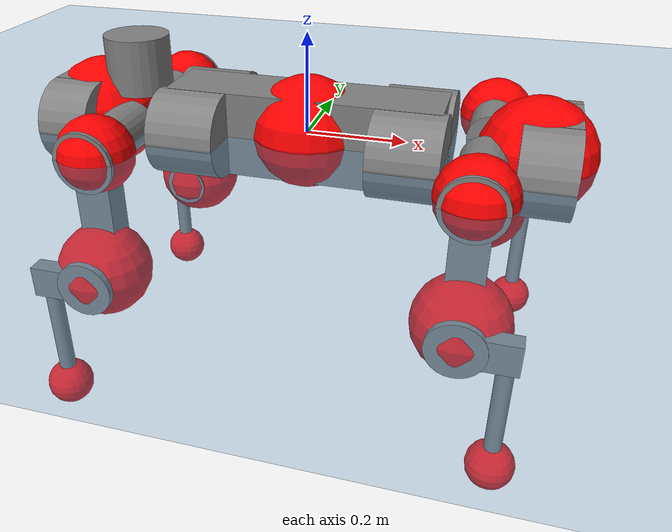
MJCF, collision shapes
<mujoco model="anymal_c">
  <compiler angle="radian" assetdir="assets" balanceinertia="true" inertiafromgeom="false"/>

  <option timestep="0.005" density="1.2" viscosity="2e-05"/>

  <size nkey="1"/>

  <visual>
    <quality shadowsize="8192"/>
    <map shadowclip="0.5"/>
  </visual>

  <default>
    <default class="/">
      <material specular="0" shininess="0.25"/>
      <geom contype="0" conaffinity="0" group="1" solref="-1000 -80"/>
      <site size="0.01 0.005 0.005" group="5"/>
      <general forcelimited="true" forcerange="-80 80" biastype="affine" gainprm="80" biasprm="0 -80 -2"/>
      <default class="anymal_c">
        <joint armature="0.01" damping="0.01" frictionloss="0.1"/>
        <default class="visual">
          <geom type="mesh" group="2"/>
          <default class="visual_zflip"/>
        </default>
        <default class="collision">
          <geom type="cylinder" group="3"/>
          <default class="foot">
            <geom size="0.03 0 0" type="sphere" condim="6" priority="1" friction="0.8 0.02 0.01" solimp="0.015 1 0.03"/>
          </default>
        </default>
      </default>
      <default class="reward_collision_sphere">
        <geom group="5" rgba="1 0 0 1"/>
      </default>
    </default>
  </default>

  <asset>
    <texture type="skybox" colorspace="auto" name="//unnamed_texture_0" builtin="gradient" rgb1="0.95 0.95 0.95" rgb2="0.95 0.95 0.95" width="100" height="600"/>
    <texture type="2d" colorspace="auto" name="texplane" builtin="checker" rgb1="0.345 0.575 0.748" rgb2="0.345 0.575 0.748" markrgb="1 1 1" width="512" height="512"/>
    <texture type="2d" colorspace="linear" name="base" file="base.png"/>
    <texture type="2d" colorspace="linear" name="top_shell" file="top_shell.png"/>
    <texture type="2d" colorspace="linear" name="bottom_shell" file="bottom_shell.png"/>
    <texture type="2d" colorspace="linear" name="remote" file="remote.png"/>
    <texture type="2d" colorspace="linear" name="hatch" file="hatch.png"/>
    <texture type="2d" colorspace="linear" name="handle" file="handle.png"/>
    <texture type="2d" colorspace="linear" name="face" file="face.png"/>
    <texture type="2d" colorspace="linear" name="battery" file="battery.png"/>
    <texture type="2d" colorspace="linear" name="lidar_cage" file="lidar_cage.png"/>
    <texture type="2d" colorspace="linear" name="depth_camera" file="depth_camera.png"/>
    <texture type="2d" colorspace="linear" name="wide_angle_camera" file="wide_angle_camera.png"/>
    <texture type="2d" colorspace="linear" name="lidar" file="lidar.png"/>
    <texture type="2d" colorspace="linear" name="drive" file="drive.png"/>
    <texture type="2d" colorspace="linear" name="hip_l" file="hip_l.png"/>
    <texture type="2d" colorspace="linear" name="shank_l" file="shank_l.png"/>
    <texture type="2d" colorspace="linear" name="foot" file="foot.png"/>
    <texture type="2d" colorspace="linear" name="thigh" file="thigh.png"/>
    <texture type="2d" colorspace="linear" name="shank_r" file="shank_r.png"/>
    <texture type="2d" colorspace="linear" name="hip_r" file="hip_r.png"/>
    <material name="MatPlane" class="/" texture="texplane" texuniform="true" texrepeat="2 2" specular="0.9" shininess="0.5"/>
    <material name="black_plastic" class="/" rgba="0.007 0.007 0.007 1"/>
    <material name="green" class="/" rgba="0.052 0.178 0.033 1"/>
    <material name="red" class="/" rgba="0.178 0.006 0.005 1"/>
    <material name="yellow" class="/" rgba="0.178 0.119 0.006 1"/>
    <material name="lwl" class="/" rgba="0.8 0.8 0.8 1"/>
    <material name="base" class="/" texture="base"/>
    <material name="top_shell" class="/" texture="top_shell"/>
    <material name="bottom_shell" class="/" texture="bottom_shell"/>
    <material name="hip_l" class="/" texture="hip_l"/>
    <material name="thigh" class="/" texture="thigh"/>
    <material name="shank_l" class="/" texture="shank_l"/>
    <material name="foot" class="/" texture="foot"/>
    <material name="hip_r" class="/" texture="hip_r"/>
    <material name="shank" class="/" texture="shank_r"/>
    <material name="hatch" class="/" texture="hatch"/>
    <material name="remote" class="/" texture="remote"/>
    <material name="handle" class="/" texture="handle"/>
    <material name="face" class="/" texture="face"/>
    <material name="depth_camera" class="/" texture="depth_camera"/>
    <material name="wide_angle_camera" class="/" texture="wide_angle_camera"/>
    <material name="battery" class="/" texture="battery"/>
    <material name="lidar_cage" class="/" texture="lidar_cage"/>
    <material name="lidar" class="/" texture="lidar"/>
    <material name="drive" class="/" texture="drive"/>
    <mesh name="base_0" class="/" file="base_0.obj"/>
    <mesh name="base_1" class="/" file="base_1.obj"/>
    <mesh name="base_2" class="/" file="base_2.obj"/>
    <mesh name="base_3" class="/" file="base_3.obj"/>
    <mesh name="base_4" class="/" file="base_4.obj"/>
    <mesh name="base_5" class="/" file="base_5.obj"/>
    <mesh name="top_shell" class="/" file="top_shell.obj"/>
    <mesh name="bottom_shell" class="/" file="bottom_shell.obj"/>
    <mesh name="remote" class="/" file="remote.obj"/>
    <mesh name="handle" class="/" file="handle.obj"/>
    <mesh name="face" class="/" file="face.obj"/>
    <mesh name="wide_angle_camera" class="/" file="wide_angle_camera.obj"/>
    <mesh name="depth_camera" class="/" file="depth_camera.obj"/>
    <mesh name="battery" class="/" file="battery.obj"/>
    <mesh name="lidar_cage" class="/" file="lidar_cage.obj"/>
    <mesh name="lidar" class="/" file="lidar.obj"/>
    <mesh name="drive" class="/" file="drive.obj"/>
    <mesh name="hip_l" class="/" file="hip_l.obj"/>
    <mesh name="thigh" class="/" file="thigh.obj"/>
    <mesh name="shank_l" class="/" file="shank_l.obj"/>
    <mesh name="foot" class="/" file="foot.obj"/>
    <mesh name="hip_r" class="/" file="hip_r.obj"/>
    <mesh name="hatch" class="/" file="hatch.obj"/>
    <mesh name="shank_r" class="/" file="shank_r.obj"/>
  </asset>

  <worldbody>
    <geom name="floor" class="/" size="100 100 0.125" type="plane" group="0" material="MatPlane"/>
    <light name="toplight_shadow" class="/" pos="0 0 5" dir="0.0990148 0.0990148 -0.990148" type="directional" ambient="0.04 0.04 0.04" diffuse="0.55 0.55 0.55" specular="0.12 0.12 0.12"/>
    <light name="toplight_fill" class="/" pos="0 0 5" dir="0.0990148 0.0990148 -0.990148" type="directional" castshadow="false" ambient="0.04 0.04 0.04" diffuse="0.3 0.3 0.3" specular="0.08 0.08 0.08"/>
    <body name="trunk" childclass="anymal_c" pos="0.00122966 -0.00066146 0.00242085" quat="1 0.000236277 0.000684986 0.000308747">
      <inertial pos="0.00223297 -0.000224394 0.0352187" quat="0.495256 0.502002 0.503586 0.499116" mass="15.1811" diaginertia="0.571894 0.573062 0.0845994"/>
      <joint name="//unnamed_joint_0" type="free" armature="0" damping="0" frictionloss="0"/>
      <geom name="//unnamed_geom_1" class="visual" material="green" mesh="base_0"/>
      <geom name="//unnamed_geom_2" class="visual" material="yellow" mesh="base_1"/>
      <geom name="//unnamed_geom_3" class="visual" material="red" mesh="base_2"/>
      <geom name="//unnamed_geom_4" class="visual" material="black_plastic" mesh="base_3"/>
      <geom name="//unnamed_geom_5" class="visual" material="lwl" mesh="base_4"/>
      <geom name="//unnamed_geom_6" class="visual" material="base" mesh="base_5"/>
      <geom name="trunk_1" class="collision" size="0.27262 0.0658049 0.0846063" type="box"/>
      <geom name="trunk_2" class="collision" size="0.0846063 0.0681551" pos="0.214992 0.0697444 0" quat="0.707107 0 0.707107 0"/>
      <geom name="trunk_3" class="collision" size="0.0846063 0.0681551" pos="-0.214992 0.0697444 0" quat="0.707107 0 0.707107 0"/>
      <geom name="trunk_4" class="collision" size="0.0846063 0.0681551" pos="0.214992 -0.0697444 0" quat="0.707107 0 0.707107 0"/>
      <geom name="trunk_5" class="collision" size="0.0846063 0.0681551" pos="-0.214992 -0.0697444 0" quat="0.707107 0 0.707107 0"/>
      <geom name="//unnamed_geom_12" class="visual" material="top_shell" mesh="top_shell"/>
      <geom name="//unnamed_geom_13" class="visual" material="bottom_shell" mesh="bottom_shell"/>
      <geom name="//unnamed_geom_14" class="visual" material="remote" mesh="remote"/>
      <geom name="//unnamed_geom_15" class="visual" material="handle" mesh="handle"/>
      <geom name="//unnamed_geom_16" class="visual" pos="0.40972 0 0" quat="1 0 0 0" material="face" mesh="face"/>
      <geom name="trunk_6" class="collision" size="0.0517039 0.0658049 0.0846063" pos="0.464086 0 0" type="box"/>
      <geom name="//unnamed_geom_18" class="collision" size="0.0846063 0.0517039" pos="0.464086 0.0697444 0" quat="0.707107 0 0.707107 0"/>
      <geom name="//unnamed_geom_19" class="collision" size="0.0846063 0.0517039" pos="0.464086 -0.0697444 0" quat="0.707107 0 0.707107 0"/>
      <geom name="//unnamed_geom_20" class="visual" pos="0.45632 0 -0.0232301" quat="0.965926 0 0.258819 0" material="depth_camera" mesh="depth_camera"/>
      <geom name="//unnamed_geom_21" class="visual" pos="0.507085 0 0.0125058" material="wide_angle_camera" mesh="wide_angle_camera"/>
      <geom name="//unnamed_geom_22" class="visual_zflip" pos="-0.40972 0 0" quat="0 0 0 1" material="face" mesh="face"/>
      <geom name="trunk_7" class="collision" size="0.0517039 0.0658049 0.0846063" pos="-0.464086 0 0" quat="0 0 0 1" type="box"/>
      <geom name="//unnamed_geom_24" class="collision" size="0.0846063 0.0517039" pos="-0.464086 -0.0697444 0" quat="0 -0.707107 0 0.707107"/>
      <geom name="//unnamed_geom_25" class="collision" size="0.0846063 0.0517039" pos="-0.464086 0.0697444 0" quat="0 -0.707107 0 0.707107"/>
      <geom name="//unnamed_geom_26" class="visual" pos="-0.45632 0 -0.0232301" quat="0 -0.258819 0 0.965926" material="depth_camera" mesh="depth_camera"/>
      <geom name="//unnamed_geom_27" class="visual_zflip" pos="-0.507085 0 0.0125058" quat="0 0 0 1" material="wide_angle_camera" mesh="wide_angle_camera"/>
      <geom name="//unnamed_geom_28" class="visual" material="battery" mesh="battery"/>
      <geom name="//unnamed_geom_29" class="visual" pos="0 0.0762779 0.0254315" quat="0.683013 -0.183013 0.183013 0.683013" material="depth_camera" mesh="depth_camera"/>
      <geom name="//unnamed_geom_30" class="visual" pos="0 -0.0762779 0.0254315" quat="0.683013 0.183013 0.183013 -0.683013" material="depth_camera" mesh="depth_camera"/>
      <geom name="//unnamed_geom_31" class="visual" pos="-0.359803 0 0.0614014" quat="1 0 0 0" material="lidar_cage" mesh="lidar_cage"/>
      <geom name="trunk_8" class="collision" size="0.0658049 0.0564042" pos="-0.359803 0 0.111525"/>
      <geom name="//unnamed_geom_33" class="visual" pos="-0.359803 3.096e-06 0.118793" quat="0.707107 0 0 -0.707107" material="lidar" mesh="lidar"/>
      <geom name="//unnamed_geom_34" class="visual" pos="0.296442 0.103563 2.77652e-09" quat="0.258819 0.965926 0 0" material="drive" mesh="drive"/>
      <geom name="//unnamed_geom_35" class="visual" pos="0.296442 -0.103563 -2.77652e-09" quat="0.258819 -0.965926 0 0" material="drive" mesh="drive"/>
      <geom name="//unnamed_geom_36" class="visual" pos="-0.296442 0.103563 -2.77652e-09" quat="0 0 0.965926 -0.258819" material="drive" mesh="drive"/>
      <geom name="//unnamed_geom_37" class="visual" pos="-0.296442 -0.103563 2.77652e-09" quat="0 0 -0.965926 -0.258819" material="drive" mesh="drive"/>
      <geom name="//unnamed_geom_38" class="visual" pos="0.114662 0 0.0609837" quat="1 0 0 0" material="hatch" mesh="hatch"/>
      <geom name="//unnamed_geom_39" class="reward_collision_sphere" size="0.112808"/>
      <geom name="//unnamed_geom_40" class="reward_collision_sphere" size="0.112808" pos="0.444811 0 0"/>
      <geom name="//unnamed_geom_41" class="reward_collision_sphere" size="0.112808" pos="-0.444811 0 0"/>
      <site name="imu" pos="0.256209 0.0174588 0.0372809" size="0.0094007"/>
      <camera name="track" pos="0 -1.9927 0" quat="0.707107 0.707107 0 0" mode="trackcom"/>
      <camera name="ego_camera" pos="0.444811 0 -0.0334157" quat="-0.5 -0.5 0.5 0.5"/>
      <body name="LF_HIP" pos="0.296568 0.107149 0.00160406" quat="0.259092 0.965853 -1.86891e-05 -0.000198401">
        <inertial pos="0.0571739 -0.0159209 -0.00465347" quat="-0.122972 0.717006 -0.134834 0.672756" mass="2.24224" diaginertia="0.00544206 0.00455941 0.00131005"/>
        <joint name="LF_HAA" pos="0 0 0" axis="0.999993 -0.000880872 -0.00362766" range="-0.700451 0.531829" armature="0.00935099" damping="0.0035956" frictionloss="0.104013"/>
        <geom name="//unnamed_geom_42" class="visual" pos="0 0.00016333 -2.68268e-05" quat="0.258819 -0.965926 0 0" material="hip_l" mesh="hip_l"/>
        <geom name="//unnamed_geom_43" class="visual" pos="0.0592093 -0.0717912 -0.0402582" quat="0.183013 -0.683013 0.683013 0.183013" material="drive" mesh="drive"/>
        <geom name="//unnamed_geom_44" class="collision" size="0.0470035 0.0658049" pos="0.0592093 -0.0119161 -0.00576839" quat="-0.353553 -0.612372 0.612372 -0.353553"/>
        <body name="LF_THIGH" pos="0.0593418 -0.0711822 -0.036467" quat="0.182717 -0.683229 0.682898 0.182928">
          <inertial pos="0.0308334 -0.000912384 -0.204929" quat="0.993045 -0.00152331 -0.0716497 0.093414" mass="2.64916" diaginertia="0.0295753 0.0296568 0.00171714"/>
          <joint name="LF_HFE" pos="0 0 0" axis="0.999997 -0.00174816 0.00181518" range="-3.18368 3.14315" armature="0.00908129" damping="0.0123195" frictionloss="0.0931756"/>
          <geom name="//unnamed_geom_45" class="visual" pos="-0.000156789 -2.47063e-07 0" quat="0.707107 0 0 -0.707107" material="thigh" mesh="thigh"/>
          <geom name="//unnamed_geom_46" class="collision" size="0.0611046 0.0376028" pos="0.0395388 0 0" quat="0.5 0.5 -0.5 -0.5"/>
          <geom name="//unnamed_geom_47" class="collision" size="0.0352526 0.0282021 0.132845" pos="0.0296541 0 -0.118053" quat="0.707107 0 0 -0.707107" type="box"/>
          <geom name="//unnamed_geom_48" class="visual" pos="0.0991434 0 -0.238087" quat="1 0 0 0" material="drive" mesh="drive"/>
          <geom name="//unnamed_geom_49" class="collision" size="0.0470035 0.0658049" pos="0.0299506 0 -0.238087" quat="0.707107 0 0.707107 0"/>
          <geom name="//unnamed_geom_50" class="reward_collision_sphere" size="0.0752056" pos="0.0247117 0 0"/>
          <body name="LF_SHANK" pos="0.102318 -0.00122893 -0.238295" quat="1 -4.88949e-06 1.30018e-05 5.35881e-06">
            <inertial pos="0.00882802 -0.0591693 -0.0672683" quat="0.993075 -0.114838 -5.06844e-05 -0.0247966" mass="0.487035" diaginertia="0.00982393 0.00921971 0.00046275"/>
            <joint name="LF_KFE" pos="0 0 0" axis="0.999995 -0.00228108 0.00211851" stiffness="0.000761168" range="-3.07598 3.17644" armature="0.00836742" damping="0" frictionloss="0.0810439"/>
            <geom name="//unnamed_geom_51" class="visual" pos="-5.11255e-05 -0.000272604 0" quat="0.707107 0 0 -0.707107" material="shank_l" mesh="shank_l"/>
            <geom name="LF_kfe_act" class="collision" size="0.0564042 0.0188014" pos="0.0197694 0 0" quat="0.5 0.5 -0.5 -0.5"/>
            <geom name="//unnamed_geom_53" class="collision" size="0.0540531 0.0317274 0.0178613" pos="0.0197694 -0.0572891 0" quat="0.5 0.5 -0.5 -0.5" type="box"/>
            <geom name="//unnamed_geom_54" class="visual" pos="0.0128995 -0.0877168 -0.282338" quat="0.382683 0 0 -0.92388" material="foot" mesh="foot"/>
            <geom name="LF_calf" class="collision" size="0.0164512 0.132787" pos="0.0128995 -0.0876289 -0.141169" quat="0.707107 0 0 -0.707107"/>
            <geom name="LF_foot" class="foot" size="0.0303615" pos="0.0128995 -0.0876289 -0.263541" quat="0.707107 0 0 -0.707107"/>
            <geom name="//unnamed_geom_57" class="reward_collision_sphere" size="0.094007" pos="-0.0494234 0 0"/>
            <geom name="//unnamed_geom_58" class="reward_collision_sphere" size="0.0470035" pos="0.0128995 -0.0876289 -0.263541"/>
            <site name="LF_foot" class="foot" pos="0.0128995 -0.0876289 -0.263541" quat="0.707107 0 0 -0.707107" size="0.0094007"/>
          </body>
        </body>
      </body>
      <body name="RF_HIP" pos="0.294835 -0.102961 0.00242486" quat="0.258554 -0.965996 0.000186376 0.00152125">
        <inertial pos="0.053465 0.0153861 -0.00610751" quat="0.12899 0.67857 0.139414 0.709555" mass="2.15993" diaginertia="0.00547114 0.00471935 0.00131728"/>
        <joint name="RF_HAA" pos="0 0 0" axis="0.999965 0.00118817 -0.00828689" range="-0.444966 0.681449" armature="0.0104905" damping="0.000204177" frictionloss="0.100619"/>
        <geom name="//unnamed_geom_59" class="visual" pos="0 -0.000163329 -2.68268e-05" quat="0.258819 0.965926 0 0" material="hip_r" mesh="hip_r"/>
        <geom name="//unnamed_geom_60" class="visual" pos="0.0592093 0.0717912 -0.0402582" quat="0.183013 0.683013 0.683013 -0.183013" material="drive" mesh="drive"/>
        <geom name="//unnamed_geom_61" class="collision" size="0.0470035 0.0658049" pos="0.0592093 0.0119161 -0.00576839" quat="-0.353553 0.612372 0.612372 0.353553"/>
        <body name="RF_THIGH" pos="0.0585906 0.0704699 -0.0371425" quat="0.183164 0.682728 0.683427 -0.182379">
          <inertial pos="0.0281728 -0.000961488 -0.207267" quat="0.993662 -0.00887485 -0.0682203 0.0888946" mass="2.54994" diaginertia="0.0282085 0.0291977 0.00174661"/>
          <joint name="RF_HFE" pos="0 0 0" axis="0.999968 0.00115281 0.00786941" range="-3.13415 3.10096" armature="0.00811393" damping="0.02637" frictionloss="0.0931542"/>
          <geom name="//unnamed_geom_62" class="visual" pos="-0.000156789 -2.47063e-07 0" quat="0.707107 0 0 -0.707107" material="thigh" mesh="thigh"/>
          <geom name="//unnamed_geom_63" class="collision" size="0.0611046 0.0376028" pos="0.0395388 0 0" quat="0.5 0.5 0.5 0.5"/>
          <geom name="//unnamed_geom_64" class="collision" size="0.0352526 0.0282021 0.132845" pos="0.0296541 0 -0.118053" quat="0.707107 0 0 0.707107" type="box"/>
          <geom name="//unnamed_geom_65" class="visual" pos="0.0991434 0 -0.238087" quat="1 0 0 0" material="drive" mesh="drive"/>
          <geom name="//unnamed_geom_66" class="collision" size="0.0470035 0.0658049" pos="0.0299506 0 -0.238087" quat="0.707107 0 0.707107 0"/>
          <geom name="//unnamed_geom_67" class="reward_collision_sphere" size="0.0752056" pos="0.0247117 0 0"/>
          <body name="RF_SHANK" pos="0.100798 0.00198678 -0.237641" quat="0.999999 0.000118808 0.000982431 -0.000513639">
            <inertial pos="0.00329609 0.062358 -0.0670465" quat="0.992129 0.118559 -0.00334186 0.0401678" mass="0.486781" diaginertia="0.00975857 0.009138 0.000454679"/>
            <joint name="RF_KFE" pos="0 0 0" axis="0.99991 -0.0127622 0.004253" range="-3.12991 3.11125" armature="0.00975769" damping="0.00166167" frictionloss="0.0831128"/>
            <geom name="//unnamed_geom_68" class="visual" pos="-5.11252e-05 0.000272603 0" quat="0.707107 0 0 0.707107" material="shank" mesh="shank_r"/>
            <geom name="RF_kfe_act" class="collision" size="0.0564042 0.0188014" pos="0.0197694 0 0" quat="0.5 0.5 0.5 0.5"/>
            <geom name="//unnamed_geom_70" class="collision" size="0.0540531 0.0317274 0.0178613" pos="0.0197694 0.0572891 0" quat="0.5 0.5 0.5 0.5" type="box"/>
            <geom name="//unnamed_geom_71" class="visual" pos="0.0128995 0.0877168 -0.282338" quat="0.382683 0 0 0.92388" material="foot" mesh="foot"/>
            <geom name="RF_calf" class="collision" size="0.0164512 0.132787" pos="0.0128995 0.0876289 -0.141169" quat="0.707107 0 0 0.707107"/>
            <geom name="RF_foot" class="foot" size="0.0293615" pos="0.0128995 0.0876289 -0.263541" quat="0.707107 0 0 0.707107"/>
            <geom name="//unnamed_geom_74" class="reward_collision_sphere" size="0.094007" pos="-0.0494234 0 0"/>
            <geom name="//unnamed_geom_75" class="reward_collision_sphere" size="0.0470035" pos="0.0128995 0.0876289 -0.263541"/>
            <site name="RF_foot" class="foot" pos="0.0128995 0.0876289 -0.263541" quat="0.707107 0 0 0.707107" size="0.0094007"/>
          </body>
        </body>
      </body>
      <body name="LH_HIP" pos="-0.295285 0.10275 0.00115743" quat="0.00012146 0.000434645 0.966341 -0.257264">
        <inertial pos="0.0534894 0.0163285 -0.00446097" quat="0.14047 0.686033 0.132853 0.70141" mass="2.23006" diaginertia="0.00524199 0.00487371 0.00130152"/>
        <joint name="LH_HAA" pos="0 0 0" axis="0.999996 0.00179556 0.00238821" range="-0.476725 0.692787" armature="0.00921206" damping="0.00448286" frictionloss="0.094496"/>
        <geom name="//unnamed_geom_76" class="visual" pos="0 -0.000163329 -2.68268e-05" quat="-0.258819 -0.965926 0 0" material="hip_r" mesh="hip_r"/>
        <geom name="//unnamed_geom_77" class="visual" pos="0.0592093 0.0717912 -0.0402582" quat="0.183013 0.683013 0.683013 -0.183013" material="drive" mesh="drive"/>
        <geom name="//unnamed_geom_78" class="collision" size="0.0470035 0.0658049" pos="0.0592093 0.0119161 -0.00576839" quat="-0.353553 0.612372 0.612372 0.353553"/>
        <body name="LH_THIGH" pos="0.0581735 0.0727089 -0.0393221" quat="0.183268 0.683009 0.683034 -0.182687">
          <inertial pos="0.0274094 -0.000775483 -0.202225" quat="0.992764 -0.00595739 -0.0809318 0.0885147" mass="2.44801" diaginertia="0.0267525 0.0285963 0.00165038"/>
          <joint name="LH_HFE" pos="0 0 0" axis="0.999911 0.00255293 0.0131203" stiffness="0.00794253" range="-3.16977 3.13248" armature="0.00903045" damping="0.0235086" frictionloss="0.10562"/>
          <geom name="//unnamed_geom_79" class="visual" pos="-0.000156789 -2.47063e-07 0" quat="0.707107 0 0 -0.707107" material="thigh" mesh="thigh"/>
          <geom name="//unnamed_geom_80" class="collision" size="0.0611046 0.0376028" pos="0.0395388 0 0" quat="0.5 0.5 -0.5 -0.5"/>
          <geom name="//unnamed_geom_81" class="collision" size="0.0352526 0.0282021 0.132845" pos="0.0296541 0 -0.118053" quat="0.707107 0 0 -0.707107" type="box"/>
          <geom name="//unnamed_geom_82" class="visual" pos="0.0991434 0 -0.238087" quat="1 0 0 0" material="drive" mesh="drive"/>
          <geom name="//unnamed_geom_83" class="collision" size="0.0470035 0.0658049" pos="0.0299506 0 -0.238087" quat="0.707107 0 0.707107 0"/>
          <geom name="//unnamed_geom_84" class="reward_collision_sphere" size="0.0752056" pos="0.0247117 0 0"/>
          <body name="LH_SHANK" pos="0.097541 -0.00207541 -0.237113" quat="1 -0.000114603 -3.11643e-05 -4.21683e-05">
            <inertial pos="0.00755888 0.0620116 -0.0646605" quat="0.993593 0.109958 -0.00155094 0.026064" mass="0.48182" diaginertia="0.00951355 0.00872167 0.000464674"/>
            <joint name="LH_KFE" pos="0 0 0" axis="0.999997 0.00068122 -0.00249537" range="-3.11408 3.20754" armature="0.00875034" damping="0.0216485" frictionloss="0.0947969"/>
            <geom name="//unnamed_geom_85" class="visual" pos="-5.11252e-05 0.000272603 0" quat="-0.707107 0 0 -0.707107" material="shank" mesh="shank_r"/>
            <geom name="LH_kfe_act" class="collision" size="0.0564042 0.0188014" pos="0.0197694 0 0" quat="0.5 0.5 -0.5 -0.5"/>
            <geom name="//unnamed_geom_87" class="collision" size="0.0540531 0.0317274 0.0178613" pos="0.0197694 0.0572891 0" quat="0.5 0.5 -0.5 -0.5" type="box"/>
            <geom name="//unnamed_geom_88" class="visual" pos="0.0128995 0.0877168 -0.282338" quat="-0.382683 0 0 -0.92388" material="foot" mesh="foot"/>
            <geom name="LH_calf" class="collision" size="0.0164512 0.132787" pos="0.0128995 0.0876289 -0.141169" quat="0.707107 0 0 -0.707107"/>
            <geom name="LH_foot" class="foot" size="0.0309426" pos="0.0128995 0.0876289 -0.263541" quat="0.707107 0 0 -0.707107"/>
            <geom name="//unnamed_geom_91" class="reward_collision_sphere" size="0.094007" pos="-0.0494234 0 0"/>
            <geom name="//unnamed_geom_92" class="reward_collision_sphere" size="0.0470035" pos="0.0128995 0.0876289 -0.263541"/>
            <site name="LH_foot" class="foot" pos="0.0128995 0.0876289 -0.263541" quat="0.707107 0 0 -0.707107" size="0.0094007"/>
          </body>
        </body>
      </body>
      <body name="RH_HIP" pos="-0.299647 -0.103801 -0.000993408" quat="-0.00012743 4.39999e-05 -0.965743 -0.259501">
        <inertial pos="0.0560007 -0.0169916 -0.00718165" quat="-0.131629 0.705457 -0.135391 0.683135" mass="2.33772" diaginertia="0.00523727 0.00463343 0.00133264"/>
        <joint name="RH_HAA" pos="0 0 0" axis="0.99986 0.012978 0.010533" range="-0.772488 0.48835" armature="0.0093064" damping="0.00838892" frictionloss="0.0791444"/>
        <geom name="//unnamed_geom_93" class="visual" pos="0 0.00016333 -2.68268e-05" quat="-0.258819 0.965926 0 0" material="hip_l" mesh="hip_l"/>
        <geom name="//unnamed_geom_94" class="visual" pos="0.0592093 -0.0717912 -0.0402582" quat="-0.183013 0.683013 -0.683013 -0.183013" material="drive" mesh="drive"/>
        <geom name="//unnamed_geom_95" class="collision" size="0.0470035 0.0658049" pos="0.0592093 -0.0119161 -0.00576839" quat="0.353553 0.612372 -0.612372 0.353553"/>
        <body name="RH_THIGH" pos="0.0581942 -0.0719672 -0.0352657" quat="-0.182366 0.682742 -0.683512 -0.182804">
          <inertial pos="0.0332755 -0.00219574 -0.204272" quat="0.993528 -0.00314968 -0.0746609 0.0855453" mass="2.55603" diaginertia="0.0273898 0.0286904 0.0016949"/>
          <joint name="RH_HFE" pos="0 0 0" axis="0.999948 -0.0100706 0.00144623" range="-3.16036 3.13593" armature="0.00898866" damping="0" frictionloss="0.0820405"/>
          <geom name="//unnamed_geom_96" class="visual" pos="-0.000156789 -2.47063e-07 0" quat="0.707107 0 0 -0.707107" material="thigh" mesh="thigh"/>
          <geom name="//unnamed_geom_97" class="collision" size="0.0611046 0.0376028" pos="0.0395388 0 0" quat="0.5 0.5 0.5 0.5"/>
          <geom name="//unnamed_geom_98" class="collision" size="0.0352526 0.0282021 0.132845" pos="0.0296541 0 -0.118053" quat="0.707107 0 0 0.707107" type="box"/>
          <geom name="//unnamed_geom_99" class="visual" pos="0.0991434 0 -0.238087" quat="1 0 0 0" material="drive" mesh="drive"/>
          <geom name="//unnamed_geom_100" class="collision" size="0.0470035 0.0658049" pos="0.0299506 0 -0.238087" quat="0.707107 0 0.707107 0"/>
          <geom name="//unnamed_geom_101" class="reward_collision_sphere" size="0.0752056" pos="0.0247117 0 0"/>
          <body name="RH_SHANK" pos="0.101429 0.000769512 -0.238141" quat="0.999999 4.66088e-05 0.00035622 0.00164115">
            <inertial pos="0.00827642 -0.0613566 -0.0670538" quat="0.993287 -0.11405 0.000928397 -0.019318" mass="0.48605" diaginertia="0.00957971 0.00950935 0.000474416"/>
            <joint name="RH_KFE" pos="0 0 0" axis="0.999885 0.0147805 -0.00341619" stiffness="0.00638746" range="-3.14886 3.08872" armature="0.00900227" damping="0.0114329" frictionloss="0.0818197"/>
            <geom name="//unnamed_geom_102" class="visual" pos="-5.11255e-05 -0.000272604 0" quat="0.707107 0 0 -0.707107" material="shank_l" mesh="shank_l"/>
            <geom name="RH_kfe_act" class="collision" size="0.0564042 0.0188014" pos="0.0197694 0 0" quat="0.5 0.5 0.5 0.5"/>
            <geom name="//unnamed_geom_104" class="collision" size="0.0540531 0.0317274 0.0178613" pos="0.0197694 -0.0572891 0" quat="0.5 0.5 0.5 0.5" type="box"/>
            <geom name="//unnamed_geom_105" class="visual" pos="0.0128995 -0.0877168 -0.282338" quat="0.382683 0 0 -0.92388" material="foot" mesh="foot"/>
            <geom name="RH_calf" class="collision" size="0.0164512 0.132787" pos="0.0128995 -0.0876289 -0.141169" quat="0.707107 0 0 0.707107"/>
            <geom name="RH_foot" class="foot" size="0.0218625" pos="0.0128995 -0.0876289 -0.263541" quat="0.707107 0 0 0.707107"/>
            <geom name="//unnamed_geom_108" class="reward_collision_sphere" size="0.094007" pos="-0.0494234 0 0"/>
            <geom name="//unnamed_geom_109" class="reward_collision_sphere" size="0.0470035" pos="0.0128995 -0.0876289 -0.263541"/>
            <site name="RH_foot" class="foot" pos="0.0128995 -0.0876289 -0.263541" quat="0.707107 0 0 0.707107" size="0.0094007"/>
          </body>
        </body>
      </body>
    </body>
  </worldbody>

  <contact>
    <pair class="/" geom1="floor" geom2="LF_foot" name="//unnamed_contact_0"/>
    <pair class="/" geom1="floor" geom2="RF_foot" name="//unnamed_contact_1"/>
    <pair class="/" geom1="floor" geom2="LH_foot" name="//unnamed_contact_2"/>
    <pair class="/" geom1="floor" geom2="RH_foot" name="//unnamed_contact_3"/>
  </contact>

  <actuator>
    <general name="LF_HAA" class="/" joint="LF_HAA" forcerange="-78.3736 78.3736" gainprm="77.5222" biasprm="0 -77.5222 -1.99869"/>
    <general name="LF_HFE" class="/" joint="LF_HFE" forcerange="-81.97 81.97" gainprm="77.5222" biasprm="0 -77.5222 -1.99869"/>
    <general name="LF_KFE" class="/" joint="LF_KFE" forcerange="-80.677 80.677" gainprm="77.5222" biasprm="0 -77.5222 -1.99869"/>
    <general name="RF_HAA" class="/" joint="RF_HAA" forcerange="-71.3916 71.3916" gainprm="77.5222" biasprm="0 -77.5222 -1.99869"/>
    <general name="RF_HFE" class="/" joint="RF_HFE" forcerange="-82.522 82.522" gainprm="77.5222" biasprm="0 -77.5222 -1.99869"/>
    <general name="RF_KFE" class="/" joint="RF_KFE" forcerange="-78.1618 78.1618" gainprm="77.5222" biasprm="0 -77.5222 -1.99869"/>
    <general name="LH_HAA" class="/" joint="LH_HAA" forcerange="-78.0895 78.0895" gainprm="77.5222" biasprm="0 -77.5222 -1.99869"/>
    <general name="LH_HFE" class="/" joint="LH_HFE" forcerange="-81.7832 81.7832" gainprm="77.5222" biasprm="0 -77.5222 -1.99869"/>
    <general name="LH_KFE" class="/" joint="LH_KFE" forcerange="-72.0671 72.0671" gainprm="77.5222" biasprm="0 -77.5222 -1.99869"/>
    <general name="RH_HAA" class="/" joint="RH_HAA" forcerange="-75.885 75.885" gainprm="77.5222" biasprm="0 -77.5222 -1.99869"/>
    <general name="RH_HFE" class="/" joint="RH_HFE" forcerange="-68.468 68.468" gainprm="77.5222" biasprm="0 -77.5222 -1.99869"/>
    <general name="RH_KFE" class="/" joint="RH_KFE" forcerange="-80.323 80.323" gainprm="77.5222" biasprm="0 -77.5222 -1.99869"/>
  </actuator>

  <sensor>
    <gyro site="imu" name="imu_angular_velocity"/>
    <velocimeter site="imu" name="imu_linear_velocity"/>
    <framelinvel objtype="site" objname="LF_foot" name="LF_foot_global_linear_velocity"/>
    <framelinvel objtype="site" objname="RF_foot" name="RF_foot_global_linear_velocity"/>
    <framelinvel objtype="site" objname="LH_foot" name="LH_foot_global_linear_velocity"/>
    <framelinvel objtype="site" objname="RH_foot" name="RH_foot_global_linear_velocity"/>
  </sensor>

  <keyframe>
    <key name="home" qpos="0 0 0.55 1 0 0 0 0 0.4 -0.8 0 -0.4 0.8 0 -0.4 0.8 0 0.4 -0.8"/>
  </keyframe>
</mujoco>
